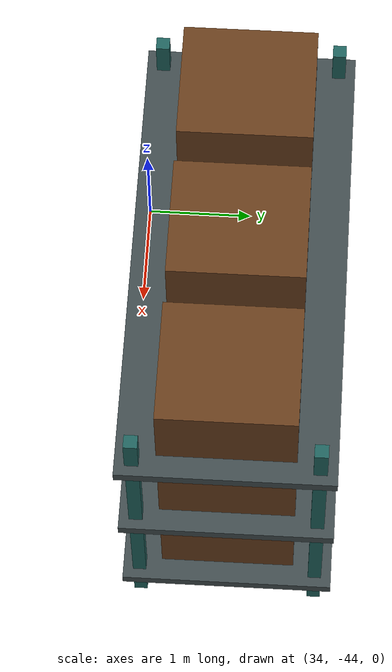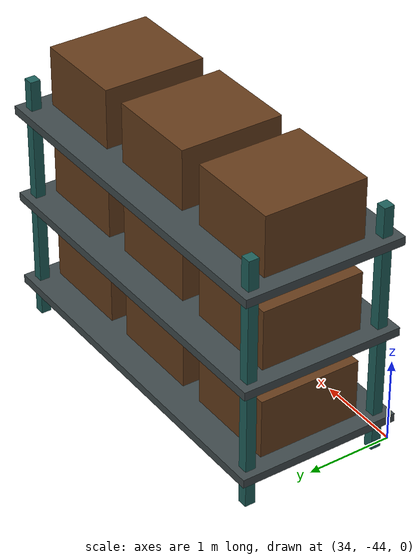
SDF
<sdf version="1.9">
 <world name="fleetscope_estate">
  <model name="warehouse_rack_36">
   <static>true</static>
   <pose>36 -43 0 0 0 0</pose>
   <link name="structure">
    <visual name="visual_0">
     <pose>-2 -0.8 1.5 0 0 0</pose>
     <geometry><box><size>0.12 0.12 3</size></box></geometry>
     <material>
      <ambient>0.12 0.38 0.36 1</ambient>
      <diffuse>0.12 0.38 0.36 1</diffuse>
      <specular>.08 .08 .08 1</specular>
     </material>
    </visual>
    <collision name="collision_0">
     <pose>-2 -0.8 1.5 0 0 0</pose>
     <geometry><box><size>0.12 0.12 3</size></box></geometry>
    </collision>
    <visual name="visual_1">
     <pose>-2 0.8 1.5 0 0 0</pose>
     <geometry><box><size>0.12 0.12 3</size></box></geometry>
     <material>
      <ambient>0.12 0.38 0.36 1</ambient>
      <diffuse>0.12 0.38 0.36 1</diffuse>
      <specular>.08 .08 .08 1</specular>
     </material>
    </visual>
    <collision name="collision_1">
     <pose>-2 0.8 1.5 0 0 0</pose>
     <geometry><box><size>0.12 0.12 3</size></box></geometry>
    </collision>
    <visual name="visual_2">
     <pose>2 -0.8 1.5 0 0 0</pose>
     <geometry><box><size>0.12 0.12 3</size></box></geometry>
     <material>
      <ambient>0.12 0.38 0.36 1</ambient>
      <diffuse>0.12 0.38 0.36 1</diffuse>
      <specular>.08 .08 .08 1</specular>
     </material>
    </visual>
    <collision name="collision_2">
     <pose>2 -0.8 1.5 0 0 0</pose>
     <geometry><box><size>0.12 0.12 3</size></box></geometry>
    </collision>
    <visual name="visual_3">
     <pose>2 0.8 1.5 0 0 0</pose>
     <geometry><box><size>0.12 0.12 3</size></box></geometry>
     <material>
      <ambient>0.12 0.38 0.36 1</ambient>
      <diffuse>0.12 0.38 0.36 1</diffuse>
      <specular>.08 .08 .08 1</specular>
     </material>
    </visual>
    <collision name="collision_3">
     <pose>2 0.8 1.5 0 0 0</pose>
     <geometry><box><size>0.12 0.12 3</size></box></geometry>
    </collision>
    <visual name="visual_4">
     <pose>0 0 0.4 0 0 0</pose>
     <geometry><box><size>4.3 1.9 0.1</size></box></geometry>
     <material>
      <ambient>0.25 0.29 0.3 1</ambient>
      <diffuse>0.25 0.29 0.3 1</diffuse>
      <specular>.08 .08 .08 1</specular>
     </material>
     <cast_shadows>false</cast_shadows>
    </visual>
    <collision name="collision_4">
     <pose>0 0 0.4 0 0 0</pose>
     <geometry><box><size>4.3 1.9 0.1</size></box></geometry>
    </collision>
    <visual name="visual_5">
     <pose>-1.4 0 0.8 0 0 0</pose>
     <geometry><box><size>1.1 1.2 0.7</size></box></geometry>
     <material>
      <ambient>0.4 0.24 0.11 1</ambient>
      <diffuse>0.4 0.24 0.11 1</diffuse>
      <specular>.08 .08 .08 1</specular>
     </material>
    </visual>
    <collision name="collision_5">
     <pose>-1.4 0 0.8 0 0 0</pose>
     <geometry><box><size>1.1 1.2 0.7</size></box></geometry>
    </collision>
    <visual name="visual_6">
     <pose>0 0 0.8 0 0 0</pose>
     <geometry><box><size>1.1 1.2 0.7</size></box></geometry>
     <material>
      <ambient>0.4 0.24 0.11 1</ambient>
      <diffuse>0.4 0.24 0.11 1</diffuse>
      <specular>.08 .08 .08 1</specular>
     </material>
    </visual>
    <collision name="collision_6">
     <pose>0 0 0.8 0 0 0</pose>
     <geometry><box><size>1.1 1.2 0.7</size></box></geometry>
    </collision>
    <visual name="visual_7">
     <pose>1.4 0 0.8 0 0 0</pose>
     <geometry><box><size>1.1 1.2 0.7</size></box></geometry>
     <material>
      <ambient>0.4 0.24 0.11 1</ambient>
      <diffuse>0.4 0.24 0.11 1</diffuse>
      <specular>.08 .08 .08 1</specular>
     </material>
    </visual>
    <collision name="collision_7">
     <pose>1.4 0 0.8 0 0 0</pose>
     <geometry><box><size>1.1 1.2 0.7</size></box></geometry>
    </collision>
    <visual name="visual_8">
     <pose>0 0 1.5 0 0 0</pose>
     <geometry><box><size>4.3 1.9 0.1</size></box></geometry>
     <material>
      <ambient>0.25 0.29 0.3 1</ambient>
      <diffuse>0.25 0.29 0.3 1</diffuse>
      <specular>.08 .08 .08 1</specular>
     </material>
     <cast_shadows>false</cast_shadows>
    </visual>
    <collision name="collision_8">
     <pose>0 0 1.5 0 0 0</pose>
     <geometry><box><size>4.3 1.9 0.1</size></box></geometry>
    </collision>
    <visual name="visual_9">
     <pose>-1.4 0 1.9 0 0 0</pose>
     <geometry><box><size>1.1 1.2 0.7</size></box></geometry>
     <material>
      <ambient>0.4 0.24 0.11 1</ambient>
      <diffuse>0.4 0.24 0.11 1</diffuse>
      <specular>.08 .08 .08 1</specular>
     </material>
    </visual>
    <collision name="collision_9">
     <pose>-1.4 0 1.9 0 0 0</pose>
     <geometry><box><size>1.1 1.2 0.7</size></box></geometry>
    </collision>
    <visual name="visual_10">
     <pose>0 0 1.9 0 0 0</pose>
     <geometry><box><size>1.1 1.2 0.7</size></box></geometry>
     <material>
      <ambient>0.4 0.24 0.11 1</ambient>
      <diffuse>0.4 0.24 0.11 1</diffuse>
      <specular>.08 .08 .08 1</specular>
     </material>
    </visual>
    <collision name="collision_10">
     <pose>0 0 1.9 0 0 0</pose>
     <geometry><box><size>1.1 1.2 0.7</size></box></geometry>
    </collision>
    <visual name="visual_11">
     <pose>1.4 0 1.9 0 0 0</pose>
     <geometry><box><size>1.1 1.2 0.7</size></box></geometry>
     <material>
      <ambient>0.4 0.24 0.11 1</ambient>
      <diffuse>0.4 0.24 0.11 1</diffuse>
      <specular>.08 .08 .08 1</specular>
     </material>
    </visual>
    <collision name="collision_11">
     <pose>1.4 0 1.9 0 0 0</pose>
     <geometry><box><size>1.1 1.2 0.7</size></box></geometry>
    </collision>
    <visual name="visual_12">
     <pose>0 0 2.6 0 0 0</pose>
     <geometry><box><size>4.3 1.9 0.1</size></box></geometry>
     <material>
      <ambient>0.25 0.29 0.3 1</ambient>
      <diffuse>0.25 0.29 0.3 1</diffuse>
      <specular>.08 .08 .08 1</specular>
     </material>
     <cast_shadows>false</cast_shadows>
    </visual>
    <collision name="collision_12">
     <pose>0 0 2.6 0 0 0</pose>
     <geometry><box><size>4.3 1.9 0.1</size></box></geometry>
    </collision>
    <visual name="visual_13">
     <pose>-1.4 0 3 0 0 0</pose>
     <geometry><box><size>1.1 1.2 0.7</size></box></geometry>
     <material>
      <ambient>0.4 0.24 0.11 1</ambient>
      <diffuse>0.4 0.24 0.11 1</diffuse>
      <specular>.08 .08 .08 1</specular>
     </material>
    </visual>
    <collision name="collision_13">
     <pose>-1.4 0 3 0 0 0</pose>
     <geometry><box><size>1.1 1.2 0.7</size></box></geometry>
    </collision>
    <visual name="visual_14">
     <pose>0 0 3 0 0 0</pose>
     <geometry><box><size>1.1 1.2 0.7</size></box></geometry>
     <material>
      <ambient>0.4 0.24 0.11 1</ambient>
      <diffuse>0.4 0.24 0.11 1</diffuse>
      <specular>.08 .08 .08 1</specular>
     </material>
    </visual>
    <collision name="collision_14">
     <pose>0 0 3 0 0 0</pose>
     <geometry><box><size>1.1 1.2 0.7</size></box></geometry>
    </collision>
    <visual name="visual_15">
     <pose>1.4 0 3 0 0 0</pose>
     <geometry><box><size>1.1 1.2 0.7</size></box></geometry>
     <material>
      <ambient>0.4 0.24 0.11 1</ambient>
      <diffuse>0.4 0.24 0.11 1</diffuse>
      <specular>.08 .08 .08 1</specular>
     </material>
    </visual>
    <collision name="collision_15">
     <pose>1.4 0 3 0 0 0</pose>
     <geometry><box><size>1.1 1.2 0.7</size></box></geometry>
    </collision>
   </link>
  </model>
 </world>
</sdf>
